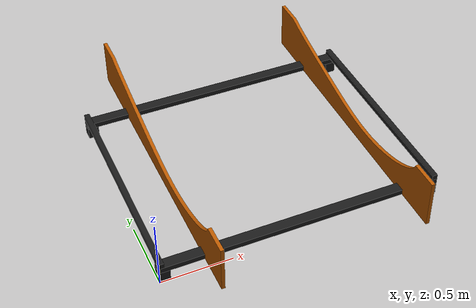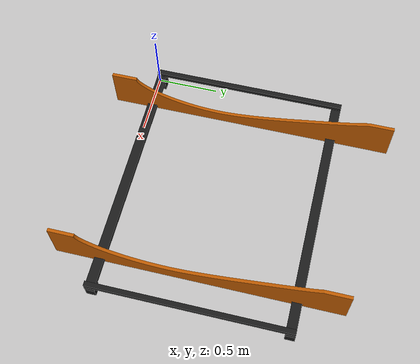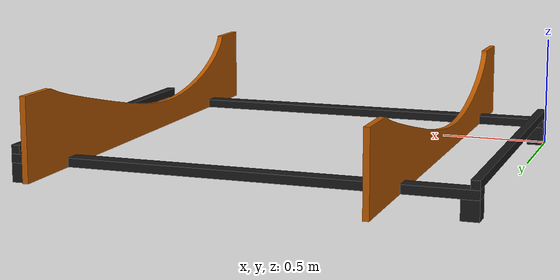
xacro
<?xml version="1.0"?>

<robot name="pickup_nest" xmlns:xacro="http://ros.org/wiki/xacro">

<link name="pickup_nest">
  <visual name="visual">
    <origin xyz="1.000 0.0381 0.1041"/>
    <geometry><box size="2.000 0.0762 0.0381"/></geometry>
    <material name="grey">
      <color rgba=".1 .1 .1 1"/>
    </material>
  </visual>
  <visual name="visual">
    <origin xyz="1.000 1.5381 0.1041"/>
    <geometry><box size="2.000 0.0762 0.0381"/></geometry>
    <material name="grey"/>
  </visual>
  <visual name="visual">
    <origin xyz="0.0195 0.7881 0.1422"/>
    <geometry><box size="0.0381 1.5762 0.0381"/></geometry>
    <material name="grey"/>
  </visual>
  <visual name="visual">
    <origin xyz="1.9805 0.7881 0.1422"/>
    <geometry><box size="0.0381 1.5762 0.0381"/></geometry>
    <material name="grey"/>
  </visual>
  <visual name="visual">
    <origin xyz="0.0381 0.0381 0.042"/>
    <geometry><box size="0.0762 0.0762 0.085"/></geometry>
    <material name="grey"/>
  </visual>
  <visual name="visual">
    <origin xyz="0.0381 1.5381 0.042"/>
    <geometry><box size="0.0762 0.0762 0.085"/></geometry>
    <material name="grey"/>
  </visual>
  <visual name="visual">
    <origin xyz="1.9619 0.0381 0.042"/>
    <geometry><box size="0.0762 0.0762 0.085"/></geometry>
    <material name="grey"/>
  </visual>
  <visual name="visual">
    <origin xyz="1.9619 1.5381 0.042"/>
    <geometry><box size="0.0762 0.0762 0.085"/></geometry>
    <material name="grey"/>
  </visual>
  <collision name="collision">
    <origin xyz="1.000 0.7881 0.0806"/>
    <geometry><box size="2.000 1.5762 0.1612"/></geometry>
  </collision>

  <visual name="visual">
    <origin rpy="0 1.5708 0" xyz=".308 -.270 0.085"/>
    <geometry><mesh filename="package://rpi_arm_composites_manufacturing_testbed/meshes/panel_nest/nest_2_point_1.stl"/></geometry>
    <material name="wood">
      <color rgba=".727 .3476 .0020 1"/>
    </material>
  </visual>
  <collision name="collision">
    <origin rpy="0 1.5708 0" xyz=".308 -.270 0.085"/>
    <geometry><mesh filename="package://rpi_arm_composites_manufacturing_testbed/meshes/panel_nest/nest_2_point_1.stl"/></geometry>
  </collision>

  <visual name="visual">
    <origin rpy="0 1.5708 0" xyz="1.730 -.305 0.085"/>
    <geometry><mesh filename="package://rpi_arm_composites_manufacturing_testbed/meshes/panel_nest/nest_2_point_2.stl"/></geometry>
    <material name="wood">
      <color rgba=".727 .3476 .0020 1"/>
    </material>
  </visual>
  <collision name="collision">
    <origin rpy="0 1.5708 0" xyz="1.730 -.305 0.085"/>
    <geometry><mesh filename="package://rpi_arm_composites_manufacturing_testbed/meshes/panel_nest/nest_2_point_2.stl"/></geometry>
  </collision>

</link>

</robot>
